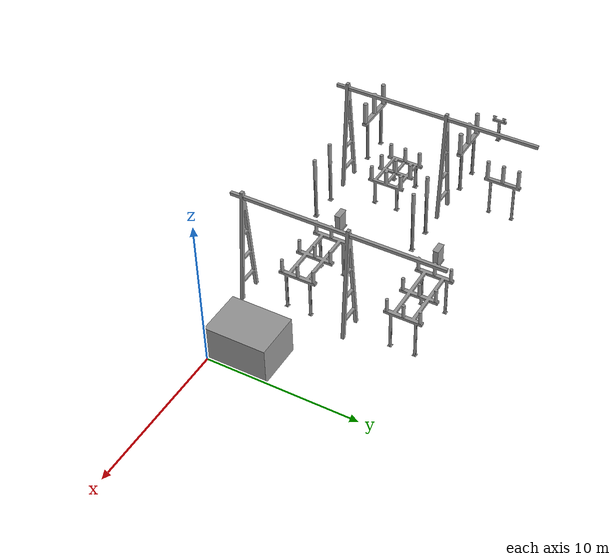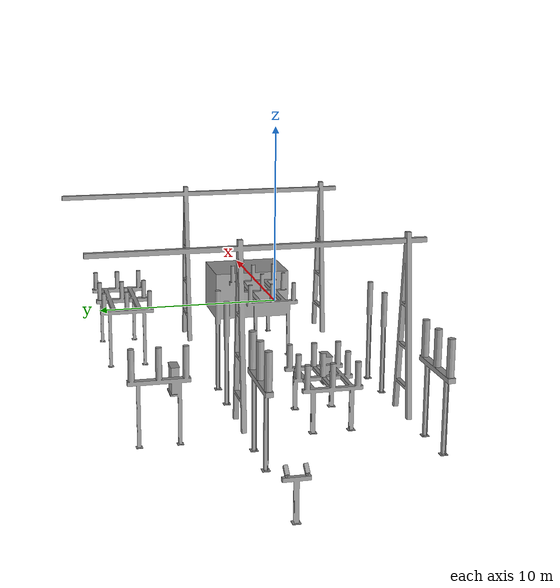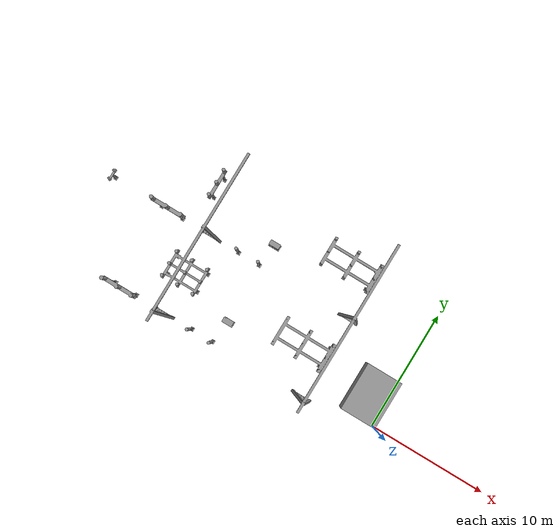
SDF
<?xml version='1.0' encoding='utf-8'?>
<sdf version="1.7">
  <model name="station_electrical_stuff_3">
    <link name="link_0">
      <inertial>
        <mass>1</mass>
        <inertia>
          <ixx>0.166667</ixx>
          <ixy>0</ixy>
          <ixz>0</ixz>
          <iyy>0.166667</iyy>
          <iyz>0</iyz>
          <izz>0.166667</izz>
        </inertia>
      </inertial>
      <pose>5e-06 1e-06 0 0 -0 0</pose>
      <visual name="visual">
        <pose>0 0 0 0 -0 0</pose>
        <geometry>
          <mesh>
            <uri>meshes/electrical_stuff_three.stl</uri>
            <scale>1 1 1</scale>
          </mesh>
        </geometry>
        <material>
          <lighting>1</lighting>
          <script>
            <uri>file://media/materials/scripts/gazebo.material</uri>
            <name>Gazebo/Grey</name>
          </script>
        </material>
        <transparency>0</transparency>
        <cast_shadows>1</cast_shadows>
      </visual>
      <collision name="collision">
        <laser_retro>0</laser_retro>
        <max_contacts>10</max_contacts>
        <pose>0 0 0 0 -0 0</pose>
        <geometry>
          <mesh>
           <uri>meshes/electrical_stuff_three_collision.stl</uri>
            <scale>1 1 1</scale>
          </mesh>
        </geometry>
        </collision>
    </link>
    <static>1</static>
    <allow_auto_disable>1</allow_auto_disable>
  </model>
</sdf>
